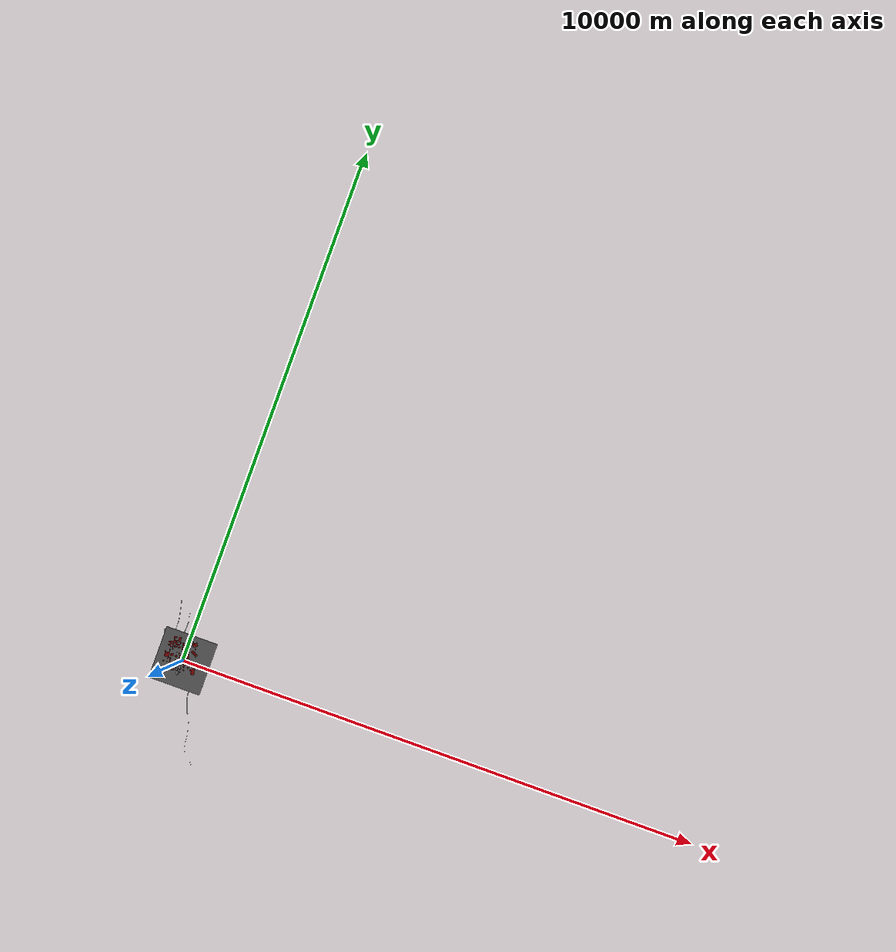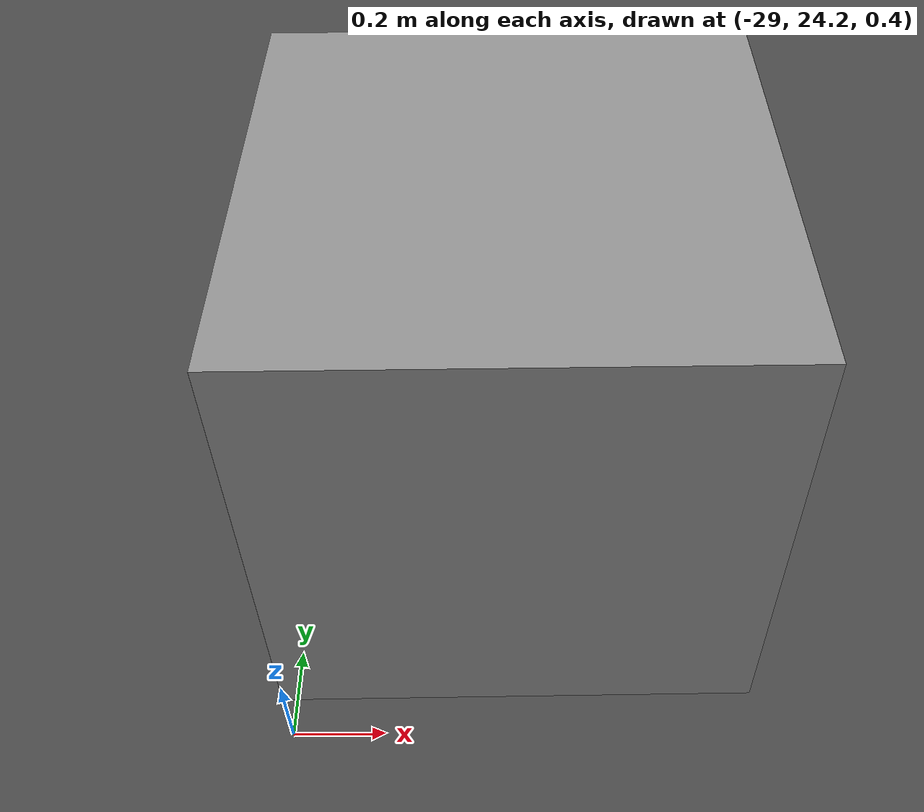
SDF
<sdf version="1.7">
 <world name="default">
  <light name="sun" type="directional">
   <pose>0 0 10 0 -0 0</pose>
   <diffuse>0.8 0.8 0.8 1</diffuse>
   <specular>0.2 0.2 0.2 1</specular>
   <attenuation>
    <range>1000</range>
    <constant>0.9</constant>
    <linear>0.01</linear>
    <quadratic>0.001</quadratic>
   </attenuation>
   <direction>-0.5 0.1 -0.9</direction>
   <spot><inner_angle>0</inner_angle><outer_angle>0</outer_angle><falloff>0</falloff></spot>
  </light>
  <gravity>0 0 -9.8</gravity>
  <magnetic_field>6e-06 2.3e-05 -4.2e-05</magnetic_field>
  <atmosphere type="adiabatic"/>
  <physics name="default_physics" default="0" type="ode">
   <max_step_size>0.001</max_step_size>
   <real_time_factor>1</real_time_factor>
   <real_time_update_rate>1000</real_time_update_rate>
  </physics>
  <scene><ambient>0.85 0.85 0.85 1</ambient><background>0.7 0.7 0.7 1</background><shadows>1</shadows></scene>
  <spherical_coordinates>
   <surface_model>EARTH_WGS84</surface_model>
   <latitude_deg>0</latitude_deg>
   <longitude_deg>0</longitude_deg>
   <elevation>0</elevation>
   <heading_deg>0</heading_deg>
  </spherical_coordinates>
  <model name="city_osm_roundabout">
   <static>1</static>
   <link name="link">
    <collision name="collision">
     <geometry><mesh><uri>model://city_osm_roundabout/meshes/model.dae</uri></mesh></geometry>
    </collision>
    <visual name="visual">
     <geometry><mesh><uri>model://city_osm_roundabout/meshes/model.dae</uri></mesh></geometry>
    </visual>
   </link>
   <pose>-71.044 72.8353 0 0 -0 0.083366</pose>
  </model>
  <model name="asphalt_plane">
   <static>1</static>
   <link name="link">
    <collision name="collision"><geometry><box><size>1000 1000 1</size></box></geometry></collision>
    <visual name="visual">
     <cast_shadows>0</cast_shadows>
     <geometry><box><size>1000 1000 1</size></box></geometry>
     <material>
      <script>
       <uri>model://asphalt_plane/materials/scripts</uri>
       <uri>model://asphalt_plane/materials/textures</uri>
       <name>vrc/asphalt</name>
      </script>
     </material>
    </visual>
   </link>
   <pose>-5.05262 -0.597253 0 0 -0 0</pose>
  </model>
  <model name="unit_box">
   <pose>13.7431 -5.44818 -38059.3 2.98011 0.37259 -0.472886</pose>
   <link name="link">
    <inertial>
     <mass>1</mass>
     <inertia>
      <ixx>0.166667</ixx>
      <ixy>0</ixy>
      <ixz>0</ixz>
      <iyy>0.166667</iyy>
      <iyz>0</iyz>
      <izz>0.166667</izz>
     </inertia>
    </inertial>
    <collision name="collision"><geometry><box><size>1 1 1</size></box></geometry></collision>
    <visual name="visual">
     <geometry><box><size>1 1 1</size></box></geometry>
     <material>
      <script><name>Gazebo/Grey</name><uri>file://media/materials/scripts/gazebo.material</uri></script>
     </material>
    </visual>
   </link>
  </model>
  <model name="unit_box_0">
   <pose>-28.5149 24.7302 0.999995 1e-05 0 1e-06</pose>
   <link name="link">
    <inertial>
     <mass>1</mass>
     <inertia>
      <ixx>0.166667</ixx>
      <ixy>0</ixy>
      <ixz>0</ixz>
      <iyy>0.166667</iyy>
      <iyz>0</iyz>
      <izz>0.166667</izz>
     </inertia>
    </inertial>
    <collision name="collision"><geometry><box><size>1 1 1</size></box></geometry></collision>
    <visual name="visual">
     <geometry><box><size>1 1 1</size></box></geometry>
     <material>
      <script><name>Gazebo/Grey</name><uri>file://media/materials/scripts/gazebo.material</uri></script>
     </material>
    </visual>
   </link>
  </model>
 </world>
</sdf>
